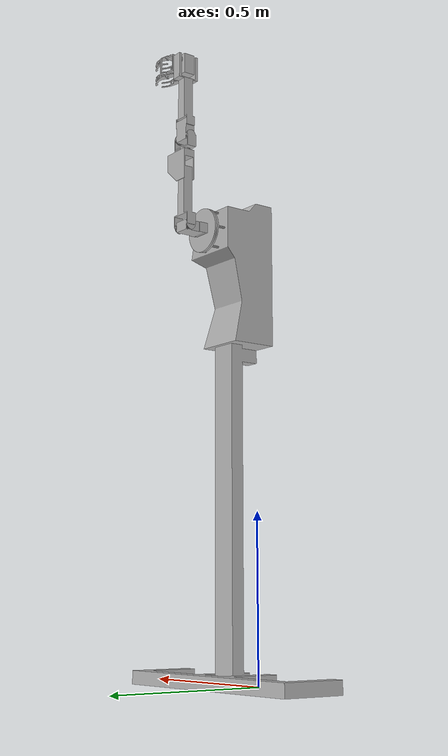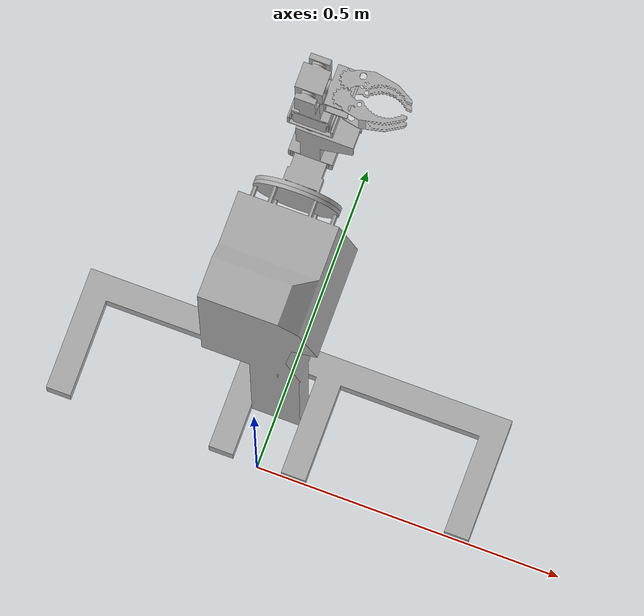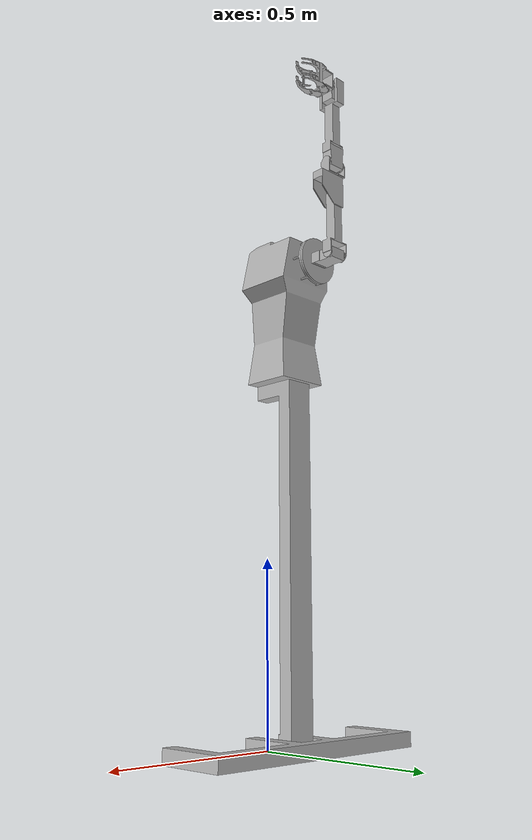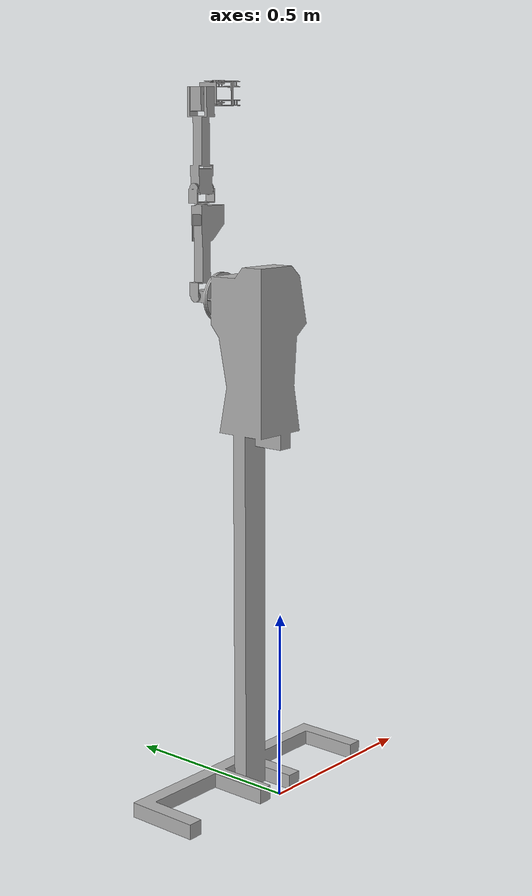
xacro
<?xml version="1.0" ?>
<robot name="left_robot" xmlns:xacro="http://www.ros.org/wiki/xacro">

<xacro:include filename="$(find left_robot_description)/urdf/materials.xacro" />
<xacro:include filename="$(find left_robot_description)/urdf/left_robot.trans" />
<xacro:include filename="$(find left_robot_description)/urdf/left_robot.gazebo" />
<link name="base_link">
  <inertial>
    <origin xyz="-0.00046460574687623283 0.08847946297090703 0.865777541522473" rpy="0 0 0"/>
    <mass value="111.29146544261582"/>
    <inertia ixx="26.70124" iyy="27.402518" izz="1.220807" ixy="-0.005107" iyz="1.09666" ixz="-0.009504"/>
  </inertial>
  <visual>
    <origin xyz="0 0 0" rpy="0 0 0"/>
    <geometry>
      <mesh filename="file://$(find left_robot_description)/meshes/base_link.stl" scale="0.001 0.001 0.001"/>
    </geometry>
    <material name="silver"/>
  </visual>
  <collision>
    <origin xyz="0 0 0" rpy="0 0 0"/>
    <geometry>
      <mesh filename="file://$(find left_robot_description)/meshes/base_link.stl" scale="0.001 0.001 0.001"/>
    </geometry>
  </collision>
</link>

<link name="left_shoulder">
  <inertial>
    <origin xyz="3.510374243868086e-17 0.02733088208948456 -2.220446049250313e-16" rpy="0 0 0"/>
    <mass value="1.4666981122291534"/>
    <inertia ixx="0.001727" iyy="0.001578" izz="0.00186" ixy="0.0" iyz="0.0" ixz="-0.0"/>
  </inertial>
  <visual>
    <origin xyz="-0.0 -0.19651 -1.3165" rpy="0 0 0"/>
    <geometry>
      <mesh filename="file://$(find left_robot_description)/meshes/shoulder_1.stl" scale="0.001 0.001 0.001"/>
    </geometry>
    <material name="silver"/>
  </visual>
  <collision>
    <origin xyz="-0.0 -0.19651 -1.3165" rpy="0 0 0"/>
    <geometry>
      <mesh filename="file://$(find left_robot_description)/meshes/shoulder_1.stl" scale="0.001 0.001 0.001"/>
    </geometry>
  </collision>
</link>

<link name="left_upper_arm">
  <inertial>
    <origin xyz="0.008260426712845922 -5.551115123125783e-17 0.1430705592158692" rpy="0 0 0"/>
    <mass value="1.9288762922196265"/>
    <inertia ixx="0.008968" iyy="0.009575" izz="0.001022" ixy="0.0" iyz="0.0" ixz="-0.001101"/>
  </inertial>
  <visual>
    <origin xyz="-0.0 -0.26451 -1.3165" rpy="0 0 0"/>
    <geometry>
      <mesh filename="file://$(find left_robot_description)/meshes/upper_arm_1.stl" scale="0.001 0.001 0.001"/>
    </geometry>
    <material name="silver"/>
  </visual>
  <collision>
    <origin xyz="-0.0 -0.26451 -1.3165" rpy="0 0 0"/>
    <geometry>
      <mesh filename="file://$(find left_robot_description)/meshes/upper_arm_1.stl" scale="0.001 0.001 0.001"/>
    </geometry>
  </collision>
</link>

<link name="left_elbow">
  <inertial>
    <origin xyz="7.425709832186824e-17 9.070522111187529e-14 0.017967251502733594" rpy="0 0 0"/>
    <mass value="0.14390404221962716"/>
    <inertia ixx="4.5e-05" iyy="0.000129" izz="0.000104" ixy="0.0" iyz="0.0" ixz="-0.0"/>
  </inertial>
  <visual>
    <origin xyz="-0.0 -0.26451 -1.5515" rpy="0 0 0"/>
    <geometry>
      <mesh filename="file://$(find left_robot_description)/meshes/elbow_1.stl" scale="0.001 0.001 0.001"/>
    </geometry>
    <material name="silver"/>
  </visual>
  <collision>
    <origin xyz="-0.0 -0.26451 -1.5515" rpy="0 0 0"/>
    <geometry>
      <mesh filename="file://$(find left_robot_description)/meshes/elbow_1.stl" scale="0.001 0.001 0.001"/>
    </geometry>
  </collision>
</link>

<link name="left_forearm">
  <inertial>
    <origin xyz="1.038890692768342e-16 -1.6653345369377348e-16 0.09502500346990606" rpy="0 0 0"/>
    <mass value="2.013213079777894"/>
    <inertia ixx="0.0118" iyy="0.0117" izz="0.000662" ixy="-0.0" iyz="-0.0" ixz="-0.0"/>
  </inertial>
  <visual>
    <origin xyz="-0.0 -0.26451 -1.5905" rpy="0 0 0"/>
    <geometry>
      <mesh filename="file://$(find left_robot_description)/meshes/forearm_1.stl" scale="0.001 0.001 0.001"/>
    </geometry>
    <material name="silver"/>
  </visual>
  <collision>
    <origin xyz="-0.0 -0.26451 -1.5905" rpy="0 0 0"/>
    <geometry>
      <mesh filename="file://$(find left_robot_description)/meshes/forearm_1.stl" scale="0.001 0.001 0.001"/>
    </geometry>
  </collision>
</link>

<link name="left_wrist">
  <inertial>
    <origin xyz="0.00022630011389308704 -5.662137425588298e-15 -0.014473720665364898" rpy="0 0 0"/>
    <mass value="0.7029015023306799"/>
    <inertia ixx="0.00029" iyy="0.000304" izz="0.000174" ixy="0.0" iyz="0.0" ixz="-2e-06"/>
  </inertial>
  <visual>
    <origin xyz="-0.0 -0.26451 -1.8305" rpy="0 0 0"/>
    <geometry>
      <mesh filename="file://$(find left_robot_description)/meshes/wrist_1.stl" scale="0.001 0.001 0.001"/>
    </geometry>
    <material name="silver"/>
  </visual>
  <collision>
    <origin xyz="-0.0 -0.26451 -1.8305" rpy="0 0 0"/>
    <geometry>
      <mesh filename="file://$(find left_robot_description)/meshes/wrist_1.stl" scale="0.001 0.001 0.001"/>
    </geometry>
  </collision>
</link>

<link name="left_hand">
  <inertial>
    <origin xyz="0.015812535108693015 -2.7755575615628914e-16 4.241051954068098e-14" rpy="0 0 0"/>
    <mass value="0.1824609520976122"/>
    <inertia ixx="0.000135" iyy="0.000108" izz="7e-05" ixy="-0.0" iyz="-0.0" ixz="0.0"/>
  </inertial>
  <visual>
    <origin xyz="-0.023 -0.26451 -1.8305" rpy="0 0 0"/>
    <geometry>
      <mesh filename="file://$(find left_robot_description)/meshes/hand_1.stl" scale="0.001 0.001 0.001"/>
    </geometry>
    <material name="silver"/>
  </visual>
  <collision>
    <origin xyz="-0.023 -0.26451 -1.8305" rpy="0 0 0"/>
    <geometry>
      <mesh filename="file://$(find left_robot_description)/meshes/hand_1.stl" scale="0.001 0.001 0.001"/>
    </geometry>
  </collision>
</link>

<link name="left_upper_clamp">
  <inertial>
    <origin xyz="0.03094811647250459 -0.0064395804078536956 0.0" rpy="0 0 0"/>
    <mass value="0.07927921862621706"/>
    <inertia ixx="6e-05" iyy="0.000112" izz="6.1e-05" ixy="5e-06" iyz="-0.0" ixz="0.0"/>
  </inertial>
  <visual>
    <origin xyz="-0.048 -0.25051 -1.8305" rpy="0 0 0"/>
    <geometry>
      <mesh filename="file://$(find left_robot_description)/meshes/upper_clamp_1.stl" scale="0.001 0.001 0.001"/>
    </geometry>
    <material name="silver"/>
  </visual>
  <collision>
    <origin xyz="-0.048 -0.25051 -1.8305" rpy="0 0 0"/>
    <geometry>
      <mesh filename="file://$(find left_robot_description)/meshes/upper_clamp_1.stl" scale="0.001 0.001 0.001"/>
    </geometry>
  </collision>
</link>

<link name="left_lower_clamp">
  <inertial>
    <origin xyz="0.03039219722172494 0.0075333119271628335 0.0" rpy="0 0 0"/>
    <mass value="0.07734674619028077"/>
    <inertia ixx="5.9e-05" iyy="0.000108" izz="5.9e-05" ixy="-6e-06" iyz="-0.0" ixz="0.0"/>
  </inertial>
  <visual>
    <origin xyz="-0.048 -0.27851 -1.8305" rpy="0 0 0"/>
    <geometry>
      <mesh filename="file://$(find left_robot_description)/meshes/lower_clamp_1.stl" scale="0.001 0.001 0.001"/>
    </geometry>
    <material name="silver"/>
  </visual>
  <collision>
    <origin xyz="-0.048 -0.27851 -1.8305" rpy="0 0 0"/>
    <geometry>
      <mesh filename="file://$(find left_robot_description)/meshes/lower_clamp_1.stl" scale="0.001 0.001 0.001"/>
    </geometry>
  </collision>
</link>

<joint name="LJ1" type="revolute">
  <origin xyz="0.0 0.19651 1.3165" rpy="0 0 0"/>
  <parent link="base_link"/>
  <child link="left_shoulder"/>
  <axis xyz="0.0 1.0 0.0"/>
  <limit upper="3.141593" lower="0.0" effort="100" velocity="100"/>
</joint>

<joint name="LJ2" type="revolute">
  <origin xyz="0.0 0.068 0.0" rpy="0 0 0"/>
  <parent link="left_shoulder"/>
  <child link="left_upper_arm"/>
  <axis xyz="-1.0 0.0 0.0"/>
  <limit upper="1.570796" lower="0.0" effort="100" velocity="100"/>
</joint>

<joint name="LJ3" type="revolute">
  <origin xyz="0.0 0.0 0.235" rpy="0 0 0"/>
  <parent link="left_upper_arm"/>
  <child link="left_elbow"/>
  <axis xyz="0.0 0.0 1.0"/>
  <limit upper="3.141593" lower="0.0" effort="100" velocity="100"/>
</joint>

<joint name="LJ4" type="revolute">
  <origin xyz="0.0 0.0 0.039" rpy="0 0 0"/>
  <parent link="left_elbow"/>
  <child link="left_forearm"/>
  <axis xyz="-1.0 -0.0 0.0"/>
  <limit upper="2.268928" lower="0.0" effort="100" velocity="100"/>
</joint>

<joint name="LJ5" type="revolute">
  <origin xyz="0.0 0.0 0.24" rpy="0 0 0"/>
  <parent link="left_forearm"/>
  <child link="left_wrist"/>
  <axis xyz="0.0 -1.0 -0.0"/>
  <limit upper="3.141593" lower="0.0" effort="100" velocity="100"/>
</joint>

<joint name="LJ6" type="revolute">
  <origin xyz="0.023 0.0 0.0" rpy="0 0 0"/>
  <parent link="left_wrist"/>
  <child link="left_hand"/>
  <axis xyz="1.0 0.0 -0.0"/>
  <limit upper="3.141593" lower="0.0" effort="100" velocity="100"/>
</joint>

<joint name="LJ7" type="revolute">
  <origin xyz="0.025 -0.014 0.0" rpy="0 0 0"/>
  <parent link="left_hand"/>
  <child link="left_upper_clamp"/>
  <axis xyz="-0.0 0.0 -1.0"/>
  <limit upper="1.22173" lower="0.0" effort="100" velocity="100"/>
</joint>

<joint name="LJ8" type="revolute">
  <origin xyz="0.025 0.014 0.0" rpy="0 0 0"/>
  <parent link="left_hand"/>
  <child link="left_lower_clamp"/>
  <axis xyz="0.0 -0.0 1.0"/>
  <limit upper="1.22173" lower="0.0" effort="100" velocity="100"/>
  <mimic joint="LJ7" multiplier="1" offset="0" />
</joint>

</robot>

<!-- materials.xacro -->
<robot name="left_robot" xmlns:xacro="http://www.ros.org/wiki/xacro" >

<material name="silver">
  <color rgba="0.700 0.700 0.700 1.000"/>
</material>

</robot>

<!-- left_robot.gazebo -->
<robot name="left_robot" xmlns:xacro="http://www.ros.org/wiki/xacro" >

<xacro:property name="body_color" value="Gazebo/Silver" />

<gazebo>
  <plugin name="control" filename="libgazebo_ros_control.so"/>
</gazebo>
<gazebo reference="base_link">
  <material>${body_color}</material>
  <mu1>0.2</mu1>
  <mu2>0.2</mu2>
  <self_collide>true</self_collide>
  <gravity>true</gravity>
</gazebo>

<gazebo reference="shoulder_1">
  <material>${body_color}</material>
  <mu1>0.2</mu1>
  <mu2>0.2</mu2>
  <self_collide>true</self_collide>
</gazebo>

<gazebo reference="upper_arm_1">
  <material>${body_color}</material>
  <mu1>0.2</mu1>
  <mu2>0.2</mu2>
  <self_collide>true</self_collide>
</gazebo>

<gazebo reference="elbow_1">
  <material>${body_color}</material>
  <mu1>0.2</mu1>
  <mu2>0.2</mu2>
  <self_collide>true</self_collide>
</gazebo>

<gazebo reference="forearm_1">
  <material>${body_color}</material>
  <mu1>0.2</mu1>
  <mu2>0.2</mu2>
  <self_collide>true</self_collide>
</gazebo>

<gazebo reference="wrist_1">
  <material>${body_color}</material>
  <mu1>0.2</mu1>
  <mu2>0.2</mu2>
  <self_collide>true</self_collide>
</gazebo>

<gazebo reference="hand_1">
  <material>${body_color}</material>
  <mu1>0.2</mu1>
  <mu2>0.2</mu2>
  <self_collide>true</self_collide>
</gazebo>

<gazebo reference="upper_clamp_1">
  <material>${body_color}</material>
  <mu1>0.2</mu1>
  <mu2>0.2</mu2>
  <self_collide>true</self_collide>
</gazebo>

<gazebo reference="lower_clamp_1">
  <material>${body_color}</material>
  <mu1>0.2</mu1>
  <mu2>0.2</mu2>
  <self_collide>true</self_collide>
</gazebo>

</robot>
